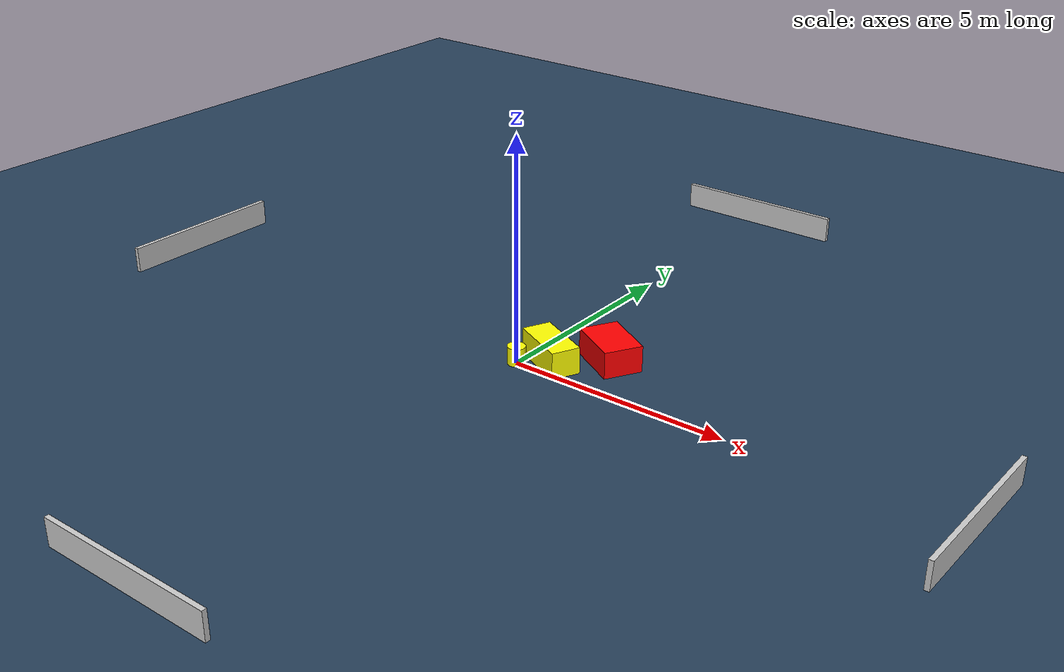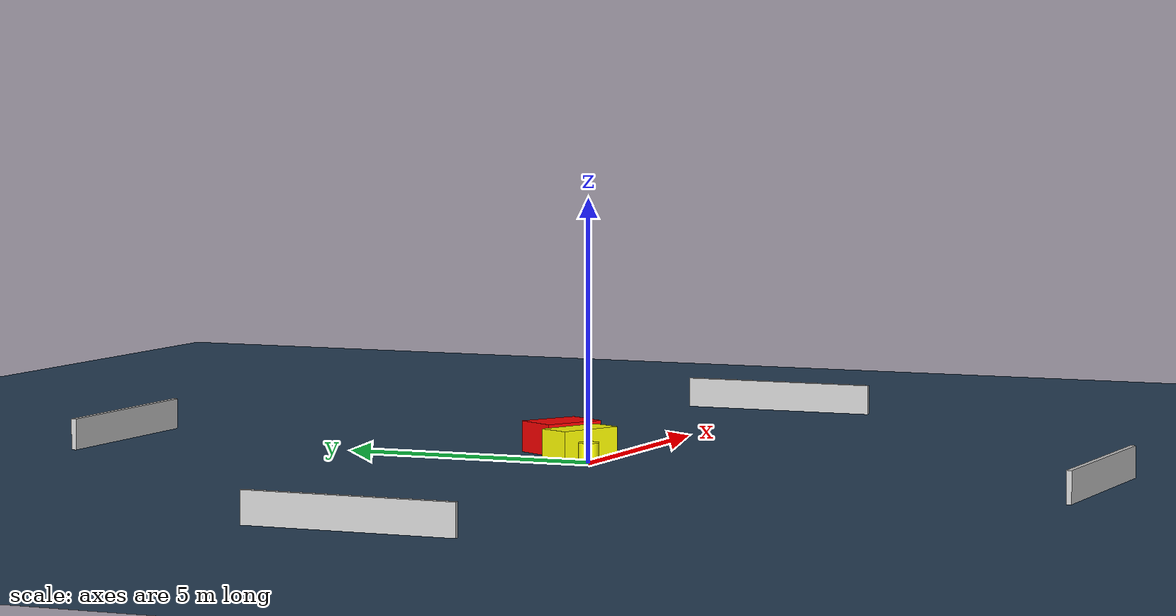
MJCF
<?xml version="1.0" ?>
<mujoco model="generated_environment">
  <option timestep="0.01" integrator="RK4" cone="elliptic"/>
  <default>
    <geom density="1"/>
  </default>
  <asset>
    <texture builtin="gradient" height="3072" name="skybox" rgb1="0.3 0.5 0.7" rgb2="0 0 0" type="skybox" width="512"/>
    <texture builtin="checker" height="300" name="groundplane" rgb1="0.2 0.3 0.4" rgb2="0.1 0.2 0.3" type="2d" width="300"/>
    <material name="groundplane" reflectance="0.2" texrepeat="5 5" texture="groundplane"/>
  </asset>
  <worldbody>
    <light dir="0 0 -1" directional="true" pos="0 0 1.5"/>
    <geom condim="3" friction="0.5 0.005 0.001" material="groundplane" name="floor" pos="0 0 0" size="0 0 0.05" type="plane"/>
    <body name="walls">
      <geom name="wall_1" condim="4" pos="-10.0 0.0 0.3" rgba="0.800000011920929 0.800000011920929 0.800000011920929 1.0" size="0.05 2.0 0.3" type="box"/>
      <geom name="wall_2" condim="4" pos="10.0 0.0 0.3" rgba="0.800000011920929 0.800000011920929 0.800000011920929 1.0" size="0.05 2.0 0.3" type="box"/>
      <geom name="wall_3" condim="4" pos="0.0 -10.0 0.3" rgba="0.800000011920929 0.800000011920929 0.800000011920929 1.0" size="2.0 0.05 0.3" type="box"/>
      <geom name="wall_4" condim="4" pos="0.0 10.0 0.3" rgba="0.800000011920929 0.800000011920929 0.800000011920929 1.0" size="2.0 0.05 0.3" type="box"/>
    </body>
    <body name="robot">
      <joint name="joint_x" type="slide" pos="0 0 0" axis="1 0 0"/>
      <joint name="joint_y" type="slide" pos="0 0 0" axis="0 1 0"/>
      <geom name="robot" type="cylinder" pos="0.0 0.0 0.2" size="0.2 0.2 0.0" mass="5.0" friction="1.0 0.005 0.0001" condim="4" rgba="1.0 1.0 0.0 1.0"/>
    </body>
    <body name="obstacle_1_movable">
      <geom name="obstacle_1_movable" condim="4" pos="0.57191865508594 0.4335896258370678 0.3" euler="0 0 335.253442973374" friction="0.0 0.005 0.001" rgba="1.0 1.0 0.0 1.0" size="0.6650803813657039 0.32430182135296864 0.3" type="box" mass="0.1"/>
      <joint type="free"/>
    </body>
    <body name="obstacle_2_static">
      <geom name="obstacle_2_static" condim="4" pos="1.5318750136336532 1.2372447392247161 0.3" euler="0 0 240.5060612793842" friction="0.0 0.005 0.001" rgba="1.0 0.0 0.0 1.0" size="0.43247285774123095 0.6239967175303303 0.3" type="box"/>
    </body>
  </worldbody>
  <actuator>
    <motor name="actuator_x" joint="joint_x" gear="1" ctrlrange="-1 1"/>
    <motor name="actuator_y" joint="joint_y" gear="1" ctrlrange="-1 1"/>
  </actuator>
</mujoco>
